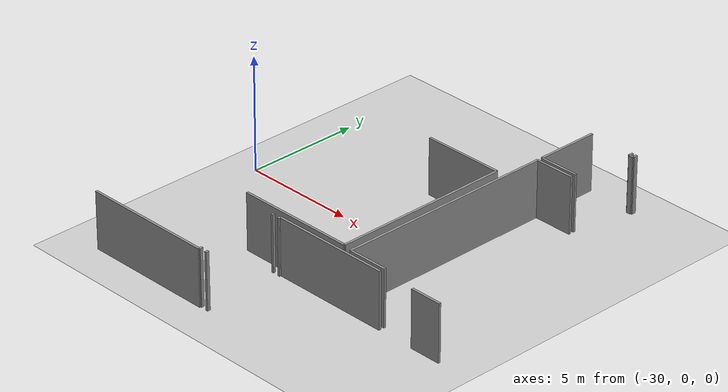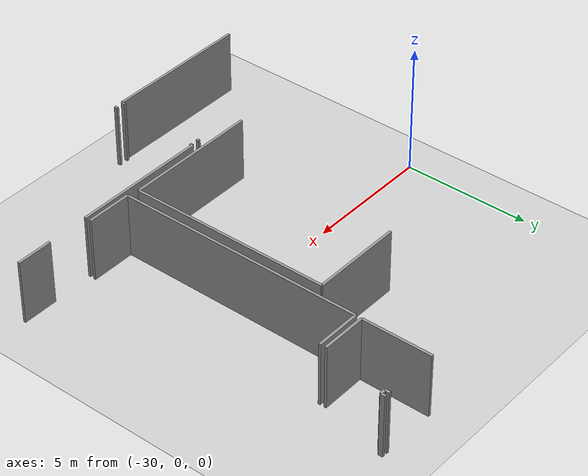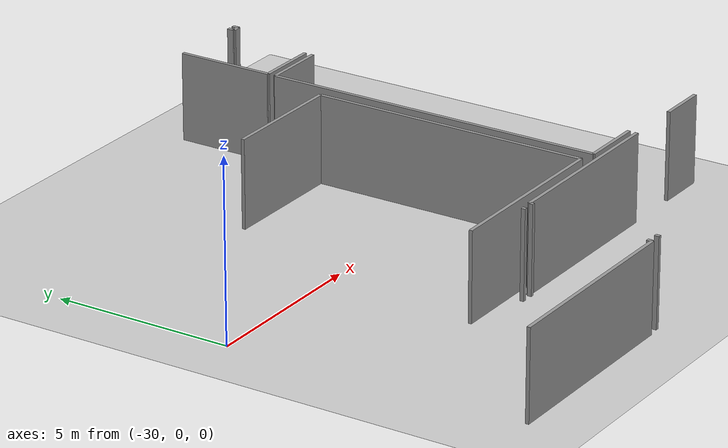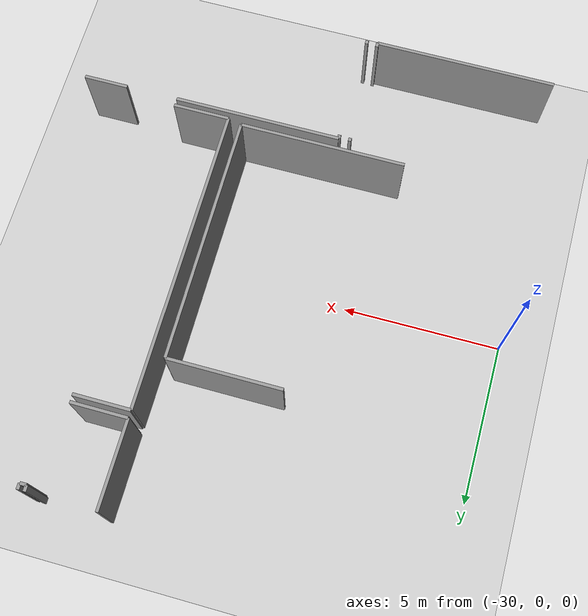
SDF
<sdf version="1.6">
 <world name="default">
  <model name="ground_plane">
   <static>1</static>
   <link name="link">
    <collision name="collision">
     <geometry><plane><normal>0 0 1</normal><size>100 100</size></plane></geometry>
     <surface><friction><ode><mu>100</mu><mu2>50</mu2></ode></friction></surface>
    </collision>
    <visual name="visual">
     <cast_shadows>0</cast_shadows>
     <geometry><plane><normal>0 0 1</normal><size>100 100</size></plane></geometry>
     <material>
      <script><uri>file://media/materials/scripts/gazebo.material</uri><name>Gazebo/Grey</name></script>
     </material>
    </visual>
   </link>
  </model>
  <model name="50041186">
   <static>1</static>
   <link name="Wall_20">
    <collision name="Wall_20_Collision">
     <geometry><box><size>5.79241630969 0.1 2.5</size></box></geometry>
     <pose>2.89620815485 0 1.25 0 0 0</pose>
    </collision>
    <visual name="Wall_20_Visual">
     <pose>2.89620815485 0 1.25 0 0 0</pose>
     <geometry><box><size>5.79241630969 0.1 2.5</size></box></geometry>
     <material>
      <script><uri>file://media/materials/scripts/gazebo.material</uri><name>Gazebo/Grey</name></script>
      <ambient>1 1 1 1</ambient>
     </material>
    </visual>
    <pose>36.0396001904 -16.5755989211 0 0 0 3.14159265359</pose>
   </link>
   <link name="Wall_28">
    <collision name="Wall_28_Collision">
     <geometry><box><size>0.11511978423 0.1 2.5</size></box></geometry>
     <pose>0.0575598921149 0 1.25 0 0 0</pose>
    </collision>
    <visual name="Wall_28_Visual">
     <pose>0.0575598921149 0 1.25 0 0 0</pose>
     <geometry><box><size>0.11511978423 0.1 2.5</size></box></geometry>
     <material>
      <script><uri>file://media/materials/scripts/gazebo.material</uri><name>Gazebo/Grey</name></script>
      <ambient>1 1 1 1</ambient>
     </material>
    </visual>
    <pose>36.0396001904 -12.9118197684 0 0 0 -1.57079632679</pose>
   </link>
   <link name="Wall_29">
    <collision name="Wall_29_Collision">
     <geometry><box><size>0.14253530065 0.1 2.5</size></box></geometry>
     <pose>0.0712676503252 0 1.25 0 0 0</pose>
    </collision>
    <visual name="Wall_29_Visual">
     <pose>0.0712676503252 0 1.25 0 0 0</pose>
     <geometry><box><size>0.14253530065 0.1 2.5</size></box></geometry>
     <material>
      <script><uri>file://media/materials/scripts/gazebo.material</uri><name>Gazebo/Grey</name></script>
      <ambient>1 1 1 1</ambient>
     </material>
    </visual>
    <pose>36.0396001904 -16.4330636205 0 0 0 -1.57079632679</pose>
   </link>
   <link name="Wall_65">
    <collision name="Wall_65_Collision">
     <geometry><box><size>5.28269078217 0.1 2.5</size></box></geometry>
     <pose>2.64134539108 0 1.25 0 0 0</pose>
    </collision>
    <visual name="Wall_65_Visual">
     <pose>2.64134539108 0 1.25 0 0 0</pose>
     <geometry><box><size>5.28269078217 0.1 2.5</size></box></geometry>
     <material>
      <script><uri>file://media/materials/scripts/gazebo.material</uri><name>Gazebo/Grey</name></script>
      <ambient>1 1 1 1</ambient>
     </material>
    </visual>
    <pose>39.468951293 -12.5740758369 0 0 0 3.14159265359</pose>
   </link>
   <link name="Wall_74">
    <collision name="Wall_74_Collision">
     <geometry><box><size>3.57924797715 0.1 2.5</size></box></geometry>
     <pose>1.78962398858 0 1.25 0 0 0</pose>
    </collision>
    <visual name="Wall_74_Visual">
     <pose>1.78962398858 0 1.25 0 0 0</pose>
     <geometry><box><size>3.57924797715 0.1 2.5</size></box></geometry>
     <material>
      <script><uri>file://media/materials/scripts/gazebo.material</uri><name>Gazebo/Grey</name></script>
      <ambient>1 1 1 1</ambient>
     </material>
    </visual>
    <pose>35.8725686181 -4.71889576392 0 0 0 0.0</pose>
   </link>
   <link name="Wall_75">
    <collision name="Wall_75_Collision">
     <geometry><box><size>7.85519876113 0.1 2.5</size></box></geometry>
     <pose>3.92759938056 0 1.25 0 0 0</pose>
    </collision>
    <visual name="Wall_75_Visual">
     <pose>3.92759938056 0 1.25 0 0 0</pose>
     <geometry><box><size>7.85519876113 0.1 2.5</size></box></geometry>
     <material>
      <script><uri>file://media/materials/scripts/gazebo.material</uri><name>Gazebo/Grey</name></script>
      <ambient>1 1 1 1</ambient>
     </material>
    </visual>
    <pose>39.4518165953 -4.71889576392 0 0 0 -1.56861500563</pose>
   </link>
   <link name="Wall_77">
    <collision name="Wall_77_Collision">
     <geometry><box><size>1.79241630969 0.1 2.5</size></box></geometry>
     <pose>0.896208154847 0 1.25 0 0 0</pose>
    </collision>
    <visual name="Wall_77_Visual">
     <pose>0.896208154847 0 1.25 0 0 0</pose>
     <geometry><box><size>1.79241630969 0.1 2.5</size></box></geometry>
     <material>
      <script><uri>file://media/materials/scripts/gazebo.material</uri><name>Gazebo/Grey</name></script>
      <ambient>1 1 1 1</ambient>
     </material>
    </visual>
    <pose>41.7072505156 -12.6825955894 0 0 0 3.14159265359</pose>
   </link>
   <link name="Wall_78">
    <collision name="Wall_78_Collision">
     <geometry><box><size>9.69227352055 0.1 2.5</size></box></geometry>
     <pose>4.84613676027 0 1.25 0 0 0</pose>
    </collision>
    <visual name="Wall_78_Visual">
     <pose>4.84613676027 0 1.25 0 0 0</pose>
     <geometry><box><size>9.69227352055 0.1 2.5</size></box></geometry>
     <material>
      <script><uri>file://media/materials/scripts/gazebo.material</uri><name>Gazebo/Grey</name></script>
      <ambient>1 1 1 1</ambient>
     </material>
    </visual>
    <pose>39.9148342059 -12.6825955894 0 0 0 1.57079632679</pose>
   </link>
   <link name="Wall_79">
    <collision name="Wall_79_Collision">
     <geometry><box><size>1.77769316199 0.1 2.5</size></box></geometry>
     <pose>0.888846580993 0 1.25 0 0 0</pose>
    </collision>
    <visual name="Wall_79_Visual">
     <pose>0.888846580993 0 1.25 0 0 0</pose>
     <geometry><box><size>1.77769316199 0.1 2.5</size></box></geometry>
     <material>
      <script><uri>file://media/materials/scripts/gazebo.material</uri><name>Gazebo/Grey</name></script>
      <ambient>1 1 1 1</ambient>
     </material>
    </visual>
    <pose>39.9148342059 -2.99032206886 0 0 0 0.0</pose>
   </link>
   <link name="Wall_83">
    <collision name="Wall_83_Collision">
     <geometry><box><size>0.136062192607 0.1 2.5</size></box></geometry>
     <pose>0.0680310963034 0 1.25 0 0 0</pose>
    </collision>
    <visual name="Wall_83_Visual">
     <pose>0.0680310963034 0 1.25 0 0 0</pose>
     <geometry><box><size>0.136062192607 0.1 2.5</size></box></geometry>
     <material>
      <script><uri>file://media/materials/scripts/gazebo.material</uri><name>Gazebo/Grey</name></script>
      <ambient>1 1 1 1</ambient>
     </material>
    </visual>
    <pose>36.3880057116 -16.5882912899 0 0 0 1.57079632679</pose>
   </link>
   <link name="Wall_84">
    <collision name="Wall_84_Collision">
     <geometry><box><size>0.121465968586 0.1 2.5</size></box></geometry>
     <pose>0.0607329842932 0 1.25 0 0 0</pose>
    </collision>
    <visual name="Wall_84_Visual">
     <pose>0.0607329842932 0 1.25 0 0 0</pose>
     <geometry><box><size>0.121465968586 0.1 2.5</size></box></geometry>
     <material>
      <script><uri>file://media/materials/scripts/gazebo.material</uri><name>Gazebo/Grey</name></script>
      <ambient>1 1 1 1</ambient>
     </material>
    </visual>
    <pose>36.3880057116 -13.0384896081 0 0 0 1.57079632679</pose>
   </link>
   <link name="Wall_85">
    <collision name="Wall_85_Collision">
     <geometry><box><size>5.31074091702 0.1 2.5</size></box></geometry>
     <pose>2.65537045851 0 1.25 0 0 0</pose>
    </collision>
    <visual name="Wall_85_Visual">
     <pose>2.65537045851 0 1.25 0 0 0</pose>
     <geometry><box><size>5.31074091702 0.1 2.5</size></box></geometry>
     <material>
      <script><uri>file://media/materials/scripts/gazebo.material</uri><name>Gazebo/Grey</name></script>
      <ambient>1 1 1 1</ambient>
     </material>
    </visual>
    <pose>36.3880057116 -12.9170236395 0 0 0 0.0</pose>
   </link>
   <link name="Wall_86">
    <collision name="Wall_86_Collision">
     <geometry><box><size>1.40783753768 0.1 2.5</size></box></geometry>
     <pose>0.70391876884 0 1.25 0 0 0</pose>
    </collision>
    <visual name="Wall_86_Visual">
     <pose>0.70391876884 0 1.25 0 0 0</pose>
     <geometry><box><size>1.40783753768 0.1 2.5</size></box></geometry>
     <material>
      <script><uri>file://media/materials/scripts/gazebo.material</uri><name>Gazebo/Grey</name></script>
      <ambient>1 1 1 1</ambient>
     </material>
    </visual>
    <pose>43.3545930509 -12.9170236395 0 0 0 0.0</pose>
   </link>
   <link name="Wall_89">
    <collision name="Wall_89_Collision">
     <geometry><box><size>1.76690464858 0.1 2.5</size></box></geometry>
     <pose>0.88345232429 0 1.25 0 0 0</pose>
    </collision>
    <visual name="Wall_89_Visual">
     <pose>0.88345232429 0 1.25 0 0 0</pose>
     <geometry><box><size>1.76690464858 0.1 2.5</size></box></geometry>
     <material>
      <script><uri>file://media/materials/scripts/gazebo.material</uri><name>Gazebo/Grey</name></script>
      <ambient>1 1 1 1</ambient>
     </material>
    </visual>
    <pose>41.6861811836 -2.75678248453 0 0 0 3.14159265359</pose>
   </link>
   <link name="Wall_90">
    <collision name="Wall_90_Collision">
     <geometry><box><size>2.74015548152 0.1 2.5</size></box></geometry>
     <pose>1.37007774076 0 1.25 0 0 0</pose>
    </collision>
    <visual name="Wall_90_Visual">
     <pose>1.37007774076 0 1.25 0 0 0</pose>
     <geometry><box><size>2.74015548152 0.1 2.5</size></box></geometry>
     <material>
      <script><uri>file://media/materials/scripts/gazebo.material</uri><name>Gazebo/Grey</name></script>
      <ambient>1 1 1 1</ambient>
     </material>
    </visual>
    <pose>39.919276535 -2.75678248453 0 0 0 1.57079632679</pose>
   </link>
   <link name="Wall_91">
    <collision name="Wall_91_Collision">
     <geometry><box><size>0.190893225448 0.1 2.5</size></box></geometry>
     <pose>0.0954466127241 0 1.25 0 0 0</pose>
    </collision>
    <visual name="Wall_91_Visual">
     <pose>0.0954466127241 0 1.25 0 0 0</pose>
     <geometry><box><size>0.190893225448 0.1 2.5</size></box></geometry>
     <material>
      <script><uri>file://media/materials/scripts/gazebo.material</uri><name>Gazebo/Grey</name></script>
      <ambient>1 1 1 1</ambient>
     </material>
    </visual>
    <pose>42.0474059971 -0.0166270030144 0 0 0 -1.57079632679</pose>
   </link>
   <link name="Wall_92">
    <collision name="Wall_92_Collision">
     <geometry><box><size>0.203331746787 0.1 2.5</size></box></geometry>
     <pose>0.101665873394 0 1.25 0 0 0</pose>
    </collision>
    <visual name="Wall_92_Visual">
     <pose>0.101665873394 0 1.25 0 0 0</pose>
     <geometry><box><size>0.203331746787 0.1 2.5</size></box></geometry>
     <material>
      <script><uri>file://media/materials/scripts/gazebo.material</uri><name>Gazebo/Grey</name></script>
      <ambient>1 1 1 1</ambient>
     </material>
    </visual>
    <pose>42.0474059971 -0.207520228463 0 0 0 0.0</pose>
   </link>
   <link name="Wall_93">
    <collision name="Wall_93_Collision">
     <geometry><box><size>0.186704743773 0.1 2.5</size></box></geometry>
     <pose>0.0933523718864 0 1.25 0 0 0</pose>
    </collision>
    <visual name="Wall_93_Visual">
     <pose>0.0933523718864 0 1.25 0 0 0</pose>
     <geometry><box><size>0.186704743773 0.1 2.5</size></box></geometry>
     <material>
      <script><uri>file://media/materials/scripts/gazebo.material</uri><name>Gazebo/Grey</name></script>
      <ambient>1 1 1 1</ambient>
     </material>
    </visual>
    <pose>42.2507377439 -0.207520228463 0 0 0 1.57079632679</pose>
   </link>
   <pose>-59.9 8.31532603522 0 0 0 0</pose>
  </model>
 </world>
</sdf>
